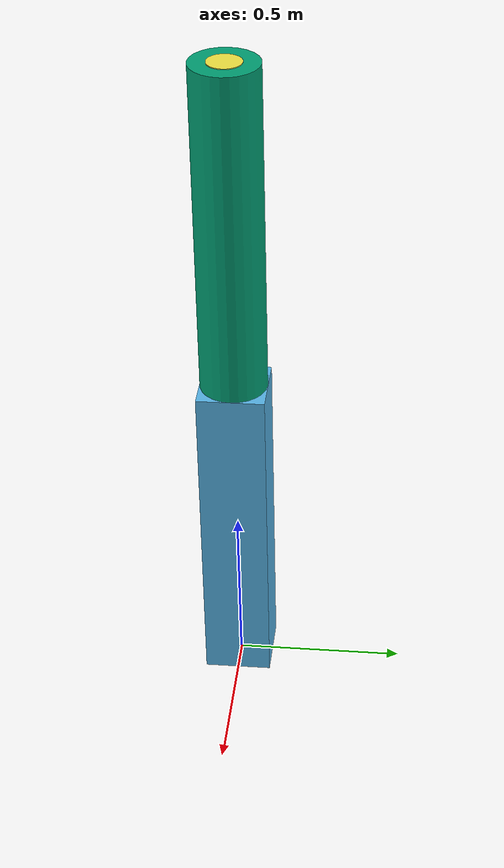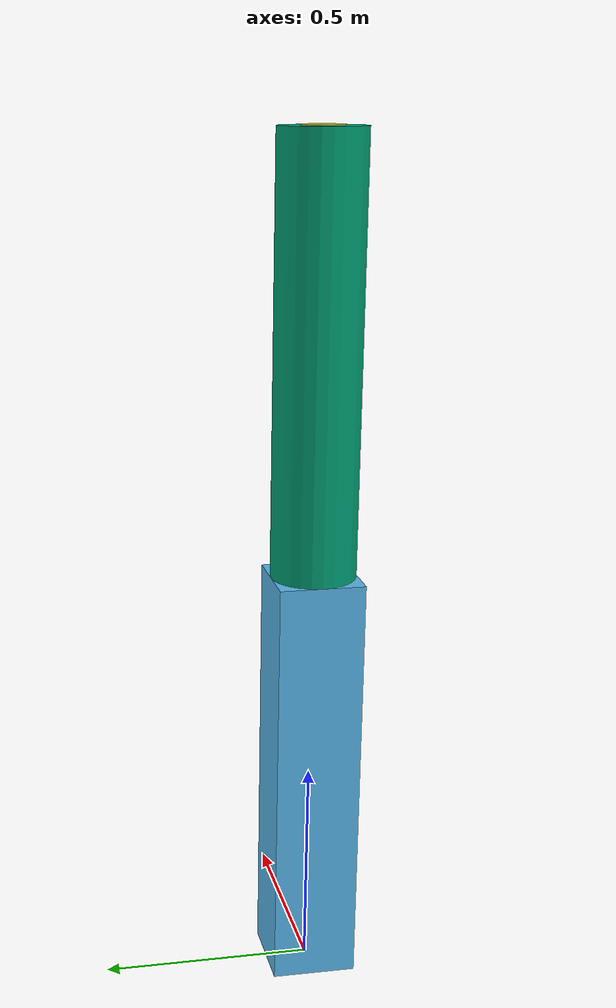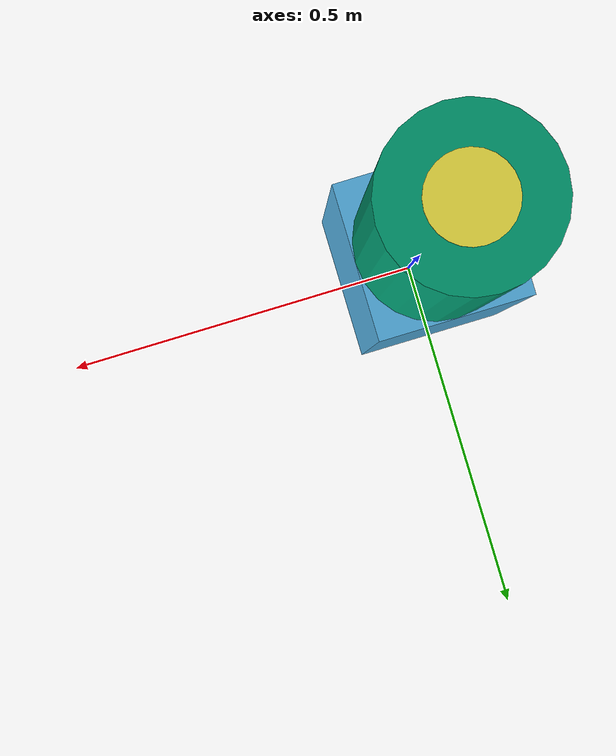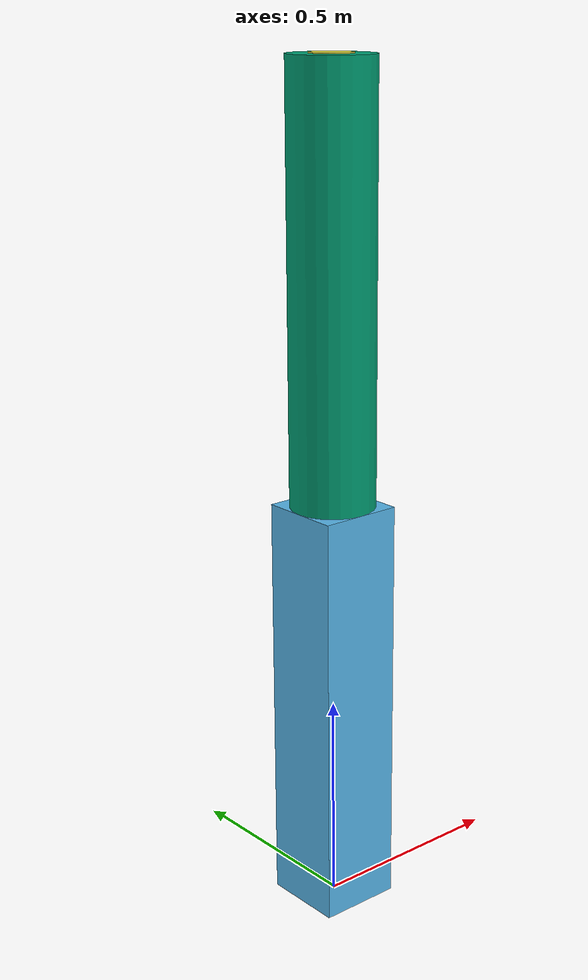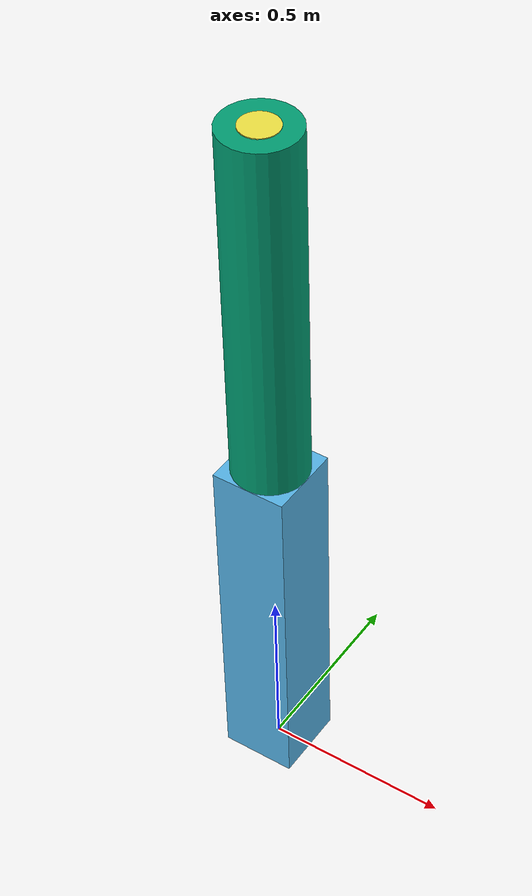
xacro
<?xml version="1.0"?>
<robot
     xmlns:xacro="http://www.ros.org/wiki/xacro" name="one_DOF_robot">
    <link name="world"/>
    <joint name="glue_robot_to_world" type="fixed">
        <parent link="world"/>
        <child link="link1"/>
    </joint>

    <link name="link1">
        <inertial>
            <origin xyz="0.0 0.0 0.5" rpy="0.0 0.0 0.0"/>
            <mass value="1.0"/>
            <inertia ixx="1.0" ixy="0.0" ixz="0.0" iyy="1.0" iyz="0.0" izz="1.0"/>
        </inertial>
        <visual>
            <origin xyz="0.0 0.0 0.5" rpy="0.0 0.0 0.0"/>
            <geometry>
                <box size="0.2 0.2 1.0"/>
            </geometry>
        </visual>
        <collision>
            <origin xyz="0.0 0.0 0.5" rpy="0.0 0.0 0.0"/>
            <geometry>
                <box size="0.2 0.2 0.7"/>
            </geometry>
        </collision>
    </link>
    <link name="link2">
        <inertial>
            <origin xyz="0.0 0.0 0.5" rpy="0.0 0.0 0.0"/>
            <mass value="1"/>
            <inertia ixx="0.1" ixy="0.0" ixz="0.0" iyy="0.1" iyz="0.0" izz="0.005"/>
        </inertial>
        <visual>
            <origin xyz="0.0 0.0 0.5" rpy="0.0 0.0 0.0"/>
            <geometry>
                <cylinder radius="0.1" length="1.0"/>
            </geometry>
        </visual>
        <collision>
            <origin xyz="0.0 0.0 0.5" rpy="0.0 0.0 0.0"/>
            <geometry>
                <cylinder radius="0.1" length="1.0"/>
            </geometry>
        </collision>
    </link>

    <joint name="joint1" type="prismatic">
        <origin xyz="0.0 0.0 1.0" rpy="0.0 0.0 0.0"/>
        <parent link="link1"/>
        <child link="link2"/>
        <axis xyz="0.0 0.0 1.0"/>
        <limit lower="-1.0" upper="1000.0" effort="0.0" velocity="100.0"/>
        <dynamics damping="10.0"/>
    </joint>
    <transmission name="tran1">
        <type>transmission_interface/SimpleTransmission</type>
        <joint name="joint1">
        <hardwareInterface>EffortJointInterface</hardwareInterface>
        </joint>
        <actuator name="motor1">
        <hardwareInterface>EffortJointInterface</hardwareInterface>
        <mechanicalReduction>1</mechanicalReduction>
        </actuator>
    </transmission>
    <gazebo>
        <plugin name="gazebo_ros_control" filename="libgazebo_ros_control.so">
        <robotNamespace>/one_DOF_robot</robotNamespace>
        </plugin>
    </gazebo>

    <!--model a f/t sensor; set up a link and a joint -->
    <link name="ft_sensor_link">
        <collision>
            <origin xyz="0 0 0" rpy="0 0 0"/>
            <geometry>
                <cylinder length="0.005" radius="0.05"/>
            </geometry>
        </collision>

        <visual>
            <origin xyz="0 0 0" rpy="0 0 0" />
            <geometry>
                <cylinder length="0.005" radius="0.05"/>
            </geometry>
        </visual>

        <inertial>
            <mass value="0.01" />
            <origin xyz="0 0 0" rpy="0 0 0"/>
            <inertia ixx="0.01" ixy="0" ixz="0" iyy="0.01" iyz="0" izz="0.01" />
        </inertial>
    </link>

    <!--ideally, this would be a static joint; until fixed in gazebo, must have dynamic jnt-->
    <joint name="ft_sensor_jnt" type="prismatic">
        <parent link="link2"/>
        <child link="ft_sensor_link"/>
        <origin xyz="0 0 1" rpy="0 0 0"/>
        <axis xyz="0 0 1"/>
        <limit effort="1000.0" lower="0" upper="0.0" velocity="0.01"/>
        <dynamics damping="1.0"/>
    </joint>

    <!-- Enable the Joint Feedback -->
    <gazebo reference="ft_sensor_jnt">
        <provideFeedback>true</provideFeedback>
    </gazebo>
    <!-- The ft_sensor plugin -->
    <gazebo>
        <plugin name="ft_sensor" filename="libgazebo_ros_ft_sensor.so">
            <updateRate>1000.0</updateRate>
            <topicName>ft_sensor_topic</topicName>
            <jointName>ft_sensor_jnt</jointName>
        </plugin>
    </gazebo>
</robot>
